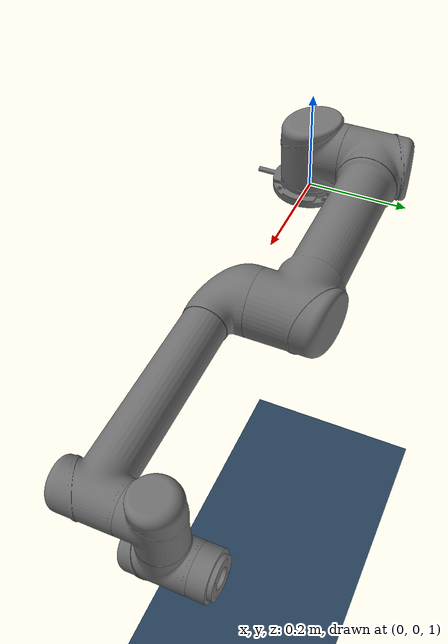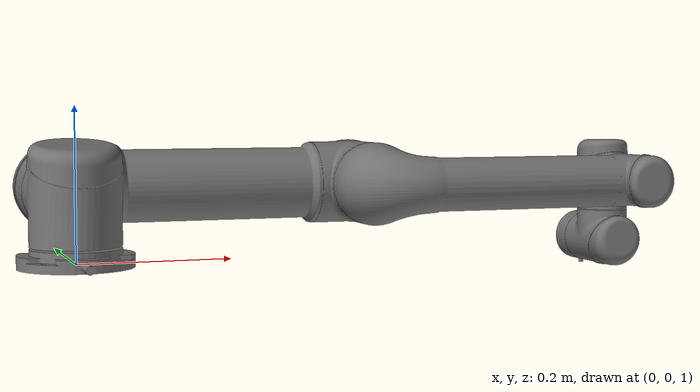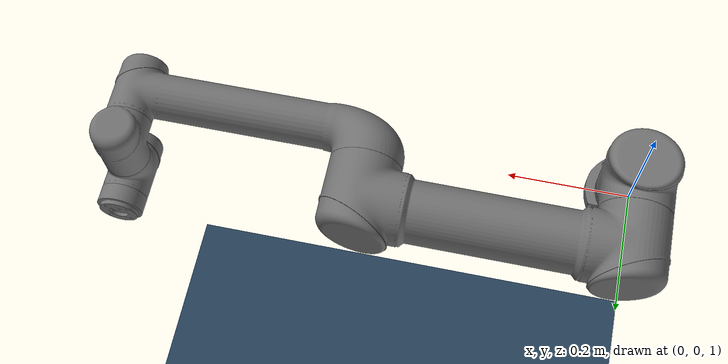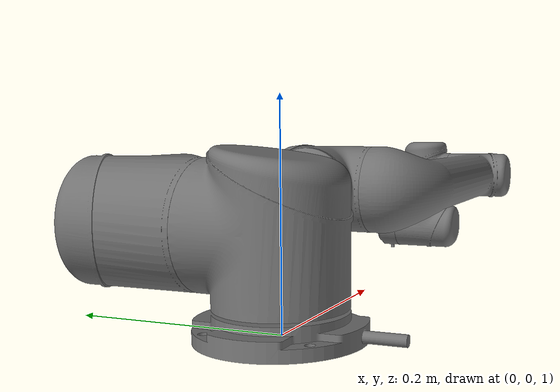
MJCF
<mujoco model="ur5_no_contacts">
    <compiler angle="radian" meshdir="mesh/visual/" texturedir="textures/" />
    <option timestep="0.001" impratio="20" tolerance="1e-10" iterations="10">
        <flag constraint="disable" contact="disable" />
    </option>
    <size njmax="600" nconmax="150" nstack="300000" />
    <visual>
        <quality shadowsize="2048" />
        <map fogend="5" znear="0.05" />
        <scale forcewidth="0.01" contactwidth="0.1" contactheight="0.005" framelength="0.1" framewidth="0.005" />
    </visual>
    <default class="main">
        <joint armature="0.01" damping="0.1" />
        <geom condim="4" solref="0.01 1" solimp="0.99 0.99 0.01 0.5 2" margin="0.001" />
        <site group="3" type="ellipsoid" rgba="0.8 0.6 0.7 0.3" />
        <default class="UR5">
            <joint damping="65" />
        </default>
        <default class="UR5e">
            <joint damping="45" />
        </default>
        <default class="GRIPPER">
            <joint damping="5" />
        </default>
    </default>
    <asset>
        <texture type="2d" name="ur5_tex" builtin="flat" rgb1="0.45 0.45 0.45" width="32" height="32" />
        <texture type="2d" name="gripper_tex" builtin="flat" rgb1="0.45 0.45 0.45" rgb2="0 0 0" width="32" height="32" />
        <texture type="2d" name="bench_tex" builtin="flat" rgb1="0.7 0.7 0.7" width="32" height="32" />
        <texture type="skybox" name="sky_tex" builtin="gradient" rgb1="1 1 1" rgb2="0.3 0.3 0.8" width="100" height="600" />
        <texture type="cube" name="texgeom" builtin="flat" mark="cross" rgb1="0.8 0.6 0.4" rgb2="0.8 0.6 0.4" markrgb="1 1 1" width="127" height="762" />
        <texture type="2d" name="floor_tex" builtin="checker" rgb1="0.2 0.3 0.4" rgb2="0.1 0.2 0.3" width="100" height="100" />
        <texture type="cube" name="wood" file="wood2.png" />
        <texture type="cube" name="metal" file="metal2.png" />
        <material name="ur5_mat" texture="ur5_tex" specular="0.75" shininess="0.9" reflectance="0.3" />
        <material name="gripper_mat" texture="gripper_tex" specular="0.75" shininess="0.9" reflectance="0.4" />
        <material name="floor_mat" texture="floor_tex" texrepeat="10 10" specular="0.7" shininess="0.8" reflectance="0.5" />
        <material name="geom" texture="texgeom" texuniform="true" />
        <material name="bench_mat" texture="metal" shininess="0.1" reflectance="0.2" />
        <material name="tablecube" texture="wood" rgba="0.8 0.8 0.8 1" />
        <mesh name="base" file="base.stl" />
        <mesh name="shoulder" file="shoulder.stl" />
        <mesh name="upperarm" file="upperarm.stl" />
        <mesh name="forearm" file="forearm.stl" />
        <mesh name="wrist1" file="wrist1.stl" />
        <mesh name="wrist2" file="wrist2.stl" />
        <mesh name="wrist3" file="wrist3.stl" />
    </asset>
    <worldbody>
        <geom name="floor" size="2.5 2.5 0.1" type="plane" material="floor_mat" />
        <light name="light3" target="base_link" pos="1 1 3" dir="0 0 -1" directional="true" mode="targetbody" />
        <body name="base_link" pos="0 0 1">
            <inertial pos="-3.04147e-06 -0.000832447 0.00757937" quat="0.500201 0.499801 -0.501022 0.498974" mass="0.33636" diaginertia="0.000830863 0.000436732 0.000423013" />
            <geom type="mesh" material="ur5_mat" mesh="base" />
            <body name="shoulder_link" pos="0 0 0.089159">
                <inertial pos="-3.16834e-06 0.00833437 0.00186356" quat="0.979134 -0.203212 -4.67557e-05 0.000743317" mass="1.33195" diaginertia="0.00295539 0.00272729 0.00246745" />
                <joint name="shoulder_pan_joint" class="UR5" pos="0 0 0" axis="0 0 1" />
                <geom type="mesh" material="ur5_mat" mesh="shoulder" />
                <body name="upper_arm_link" pos="0 0.13585 0" quat="0.707107 0 0.707107 0">
                    <inertial pos="1.05006e-09 0.00453623 0.212495" quat="1 -1.7999e-06 5.0485e-06 -1.44402e-06" mass="4.9595" diaginertia="0.120831 0.119791 0.00779386" />
                    <joint name="shoulder_lift_joint" class="UR5" pos="0 0 0" axis="0 1 0" />
                    <geom type="mesh" material="ur5_mat" mesh="upperarm" />
                    <body name="forearm_link" pos="0 -0.1197 0.425">
                        <inertial pos="-6.4011e-07 0.00288455 0.205814" quat="0.999492 0.0318739 3.50381e-07 3.33087e-05" mass="2.4397" diaginertia="0.0476379 0.0474507 0.00208267" />
                        <joint name="elbow_joint" class="UR5" pos="0 0 0" axis="0 1 0" />
                        <geom type="mesh" material="ur5_mat" mesh="forearm" />
                        <body name="wrist_1_link" pos="0 0 0.39225" quat="0.707107 0 0.707107 0">
                            <inertial pos="1.91311e-06 0.0890005 -0.00510674" quat="0.999964 0.00847377 3.60511e-05 -0.000261563" mass="0.44595" diaginertia="0.000529763 0.000494187 0.000349851" />
                            <joint name="wrist_1_joint" class="UR5e" pos="0 0 0" axis="0 1 0" />
                            <geom type="mesh" material="ur5_mat" mesh="wrist1" />
                            <body name="wrist_2_link" pos="0 0.093 0">
                                <inertial pos="-1.91219e-06 -0.00509383 0.0904448" quat="0.706908 0.707306 -0.00016419 0.0002133" mass="0.444758" diaginertia="0.000527329 0.000493077 0.000347787" />
                                <joint name="wrist_2_joint" class="UR5e" pos="0 0 0" axis="0 0 1" />
                                <geom type="mesh" material="ur5_mat" mesh="wrist2" />
                                <body name="wrist_3_link" pos="0 0 0.09465">
                                    <inertial pos="8.27932e-09 0.0639244 0.000225183" quat="0.707107 0.000623781 -0.000636088 0.707106" mass="0.128829" diaginertia="8.45498e-05 5.41732e-05 5.33607e-05" />
                                    <joint name="wrist_3_joint" class="UR5e" pos="0 0 0" axis="0 1 0" />
                                    <geom type="mesh" material="ur5_mat" mesh="wrist3" />
                                </body>
                            </body>
                        </body>
                    </body>
                </body>
            </body>
            <body name="base" pos="0 0 0" quat="1.7949e-09 0 0 -1">
                <inertial pos="0 0 0" quat="1.7949e-09 0 0 -1" mass="0" diaginertia="0 0 0" />
            </body>
        </body>
    </worldbody>
    <actuator>
        <general name="shoulder_pan_T" joint="shoulder_pan_joint" ctrllimited="true" ctrlrange="-2 2" gear="101 0 0 0 0 0" />
        <general name="shoulder_lift_T" joint="shoulder_lift_joint" ctrllimited="true" ctrlrange="-2 2" gear="101 0 0 0 0 0" />
        <general name="forearm_T" joint="elbow_joint" ctrllimited="true" ctrlrange="-2 2" gear="101 0 0 0 0 0" />
        <general name="wrist_1_T" joint="wrist_1_joint" ctrllimited="true" ctrlrange="-1 1" gear="101 0 0 0 0 0" />
        <general name="wrist_2_T" joint="wrist_2_joint" ctrllimited="true" ctrlrange="-1 1" gear="101 0 0 0 0 0" />
        <general name="wrist_3_T" joint="wrist_3_joint" ctrllimited="true" ctrlrange="-1 1" gear="101 0 0 0 0 0" />
    </actuator>
</mujoco>
